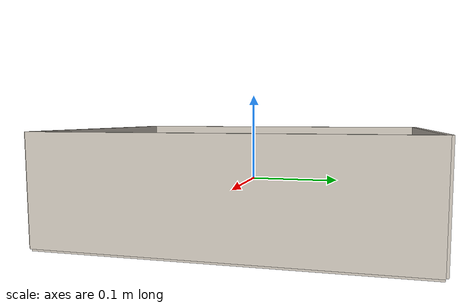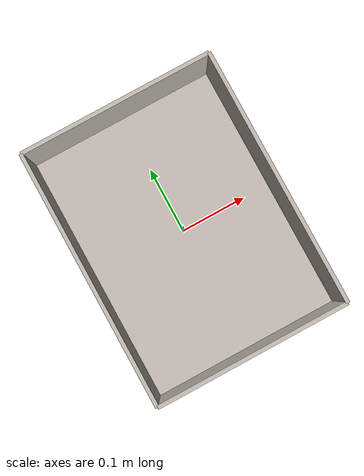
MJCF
<mujoco>
    <asset>
        <texture file="textures/boxtype.png" type="2d" name="carton"/>
        <material name="carton" reflectance="0.1" texrepeat="1 1" texture="carton" texuniform="false"/>
    </asset>
    <worldbody>
        <body name="carton">

            <geom name="carton_front_collision" pos="0 0.2 0" size="0.15 0.003 0.06" material="carton" type="box" conaffinity="1" condim="3" contype="1" group="1" mass="0.02"/>
            <geom name="carton_back_collision" pos="0 -0.2 0" size="0.15 0.003 0.06" material="carton" type="box" conaffinity="1" condim="3" contype="1" group="1" mass="0.02"/>
            <geom name="carton_left_collision" pos="0.15 0 0" size="0.003 0.2 0.06" material="carton" type="box" conaffinity="1" condim="3" contype="1" group="1" mass="0.02"/>
            <geom name="carton_right_collision" pos="-0.15 0 0" size="0.003 0.2 0.06" material="carton" type="box" conaffinity="1" condim="3" contype="1" group="1" mass="0.02"/>
            <geom name="carton_bottom_collision" pos="0 0 -0.06" size="0.15 0.2 0.003" material="carton" type="box" conaffinity="1" condim="3" contype="1" group="1" mass="0.02"/>
        </body>
    </worldbody>
</mujoco>
